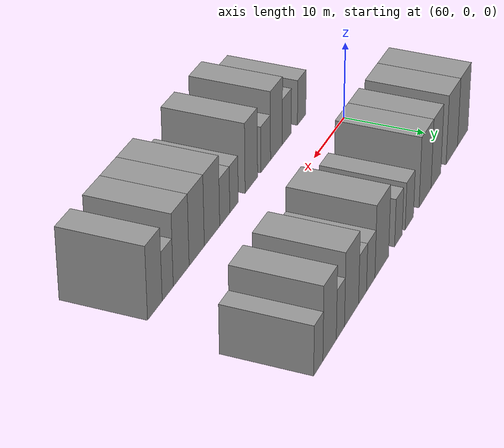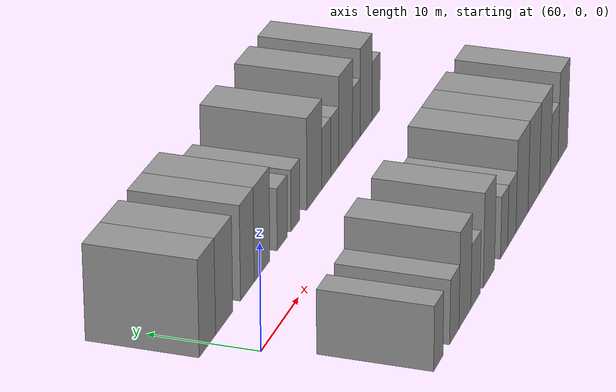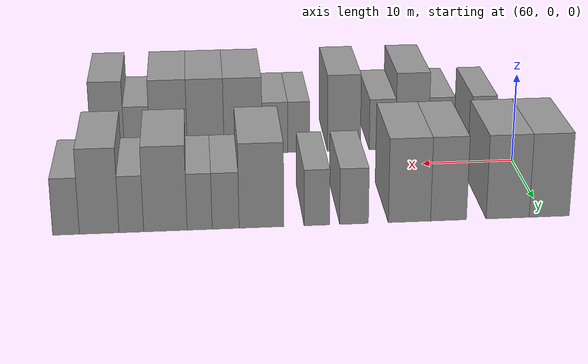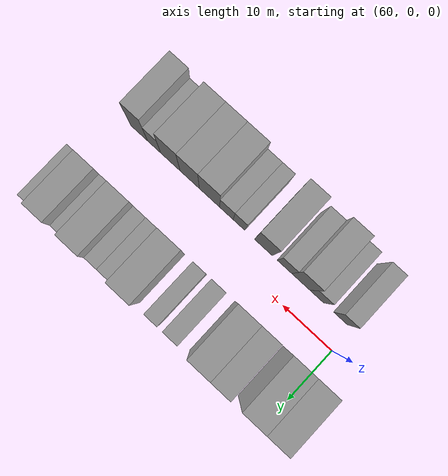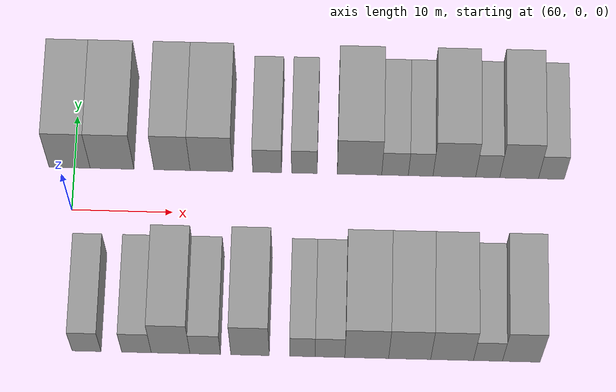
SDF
<sdf version="1.6">
 <world name="default">
  <model name="building_12">
   <static>1</static>
   <pose>59.4938 9.5000 0 0.000000 0.000000 1.570796</pose>
   <link name="link">
    <pose>0 0 4.50 0 0 0</pose>
    <collision name="collision"><geometry><box><size>10.0000 4.1035 9.0000</size></box></geometry></collision>
    <visual name="visual">
     <cast_shadows>0</cast_shadows>
     <geometry><box><size>10.0000 4.1035 9.0000</size></box></geometry>
     <material>
      <script>
       <uri>model://grey_wall/materials/scripts</uri>
       <uri>model://grey_wall/materials/textures</uri>
       <name>vrc/grey_wall</name>
      </script>
     </material>
    </visual>
   </link>
  </model>
  <model name="building_13">
   <static>1</static>
   <pose>63.7356 9.5000 0 0.000000 0.000000 1.570796</pose>
   <link name="link">
    <pose>0 0 4.50 0 0 0</pose>
    <collision name="collision"><geometry><box><size>10.0000 4.3802 9.0000</size></box></geometry></collision>
    <visual name="visual">
     <cast_shadows>0</cast_shadows>
     <geometry><box><size>10.0000 4.3802 9.0000</size></box></geometry>
     <material>
      <script>
       <uri>model://grey_wall/materials/scripts</uri>
       <uri>model://grey_wall/materials/textures</uri>
       <name>vrc/grey_wall</name>
      </script>
     </material>
    </visual>
   </link>
  </model>
  <model name="building_14">
   <static>1</static>
   <pose>69.7383 9.5000 0 0.000000 0.000000 1.570796</pose>
   <link name="link">
    <pose>0 0 4.50 0 0 0</pose>
    <collision name="collision"><geometry><box><size>10.0000 3.6252 9.0000</size></box></geometry></collision>
    <visual name="visual">
     <cast_shadows>0</cast_shadows>
     <geometry><box><size>10.0000 3.6252 9.0000</size></box></geometry>
     <material>
      <script>
       <uri>model://grey_wall/materials/scripts</uri>
       <uri>model://grey_wall/materials/textures</uri>
       <name>vrc/grey_wall</name>
      </script>
     </material>
    </visual>
   </link>
  </model>
  <model name="building_15">
   <static>1</static>
   <pose>73.6824 9.5000 0 0.000000 0.000000 1.570796</pose>
   <link name="link">
    <pose>0 0 4.50 0 0 0</pose>
    <collision name="collision"><geometry><box><size>10.0000 4.2629 9.0000</size></box></geometry></collision>
    <visual name="visual">
     <cast_shadows>0</cast_shadows>
     <geometry><box><size>10.0000 4.2629 9.0000</size></box></geometry>
     <material>
      <script>
       <uri>model://grey_wall/materials/scripts</uri>
       <uri>model://grey_wall/materials/textures</uri>
       <name>vrc/grey_wall</name>
      </script>
     </material>
    </visual>
   </link>
  </model>
  <model name="building_16">
   <static>1</static>
   <pose>79.2487 9.5000 0 0.000000 0.000000 1.570796</pose>
   <link name="link">
    <pose>0 0 3.00 0 0 0</pose>
    <collision name="collision"><geometry><box><size>10.0000 2.8696 6.0000</size></box></geometry></collision>
    <visual name="visual">
     <cast_shadows>0</cast_shadows>
     <geometry><box><size>10.0000 2.8696 6.0000</size></box></geometry>
     <material>
      <script>
       <uri>model://grey_wall/materials/scripts</uri>
       <uri>model://grey_wall/materials/textures</uri>
       <name>vrc/grey_wall</name>
      </script>
     </material>
    </visual>
   </link>
  </model>
  <model name="building_17">
   <static>1</static>
   <pose>82.9593 9.5000 0 0.000000 0.000000 1.570796</pose>
   <link name="link">
    <pose>0 0 3.00 0 0 0</pose>
    <collision name="collision"><geometry><box><size>10.0000 2.5515 6.0000</size></box></geometry></collision>
    <visual name="visual">
     <cast_shadows>0</cast_shadows>
     <geometry><box><size>10.0000 2.5515 6.0000</size></box></geometry>
     <material>
      <script>
       <uri>model://grey_wall/materials/scripts</uri>
       <uri>model://grey_wall/materials/textures</uri>
       <name>vrc/grey_wall</name>
      </script>
     </material>
    </visual>
   </link>
  </model>
  <model name="building_18">
   <static>1</static>
   <pose>88.4551 9.5000 0 0.000000 0.000000 1.570796</pose>
   <link name="link">
    <pose>0 0 4.50 0 0 0</pose>
    <collision name="collision"><geometry><box><size>10.0000 4.4401 9.0000</size></box></geometry></collision>
    <visual name="visual">
     <cast_shadows>0</cast_shadows>
     <geometry><box><size>10.0000 4.4401 9.0000</size></box></geometry>
     <material>
      <script>
       <uri>model://grey_wall/materials/scripts</uri>
       <uri>model://grey_wall/materials/textures</uri>
       <name>vrc/grey_wall</name>
      </script>
     </material>
    </visual>
   </link>
  </model>
  <model name="building_19">
   <static>1</static>
   <pose>92.0016 9.5000 0 0.000000 0.000000 1.570796</pose>
   <link name="link">
    <pose>0 0 3.00 0 0 0</pose>
    <collision name="collision"><geometry><box><size>10.0000 2.6529 6.0000</size></box></geometry></collision>
    <visual name="visual">
     <cast_shadows>0</cast_shadows>
     <geometry><box><size>10.0000 2.6529 6.0000</size></box></geometry>
     <material>
      <script>
       <uri>model://grey_wall/materials/scripts</uri>
       <uri>model://grey_wall/materials/textures</uri>
       <name>vrc/grey_wall</name>
      </script>
     </material>
    </visual>
   </link>
  </model>
  <model name="building_20">
   <static>1</static>
   <pose>94.5586 9.5000 0 0.000000 0.000000 1.570796</pose>
   <link name="link">
    <pose>0 0 3.00 0 0 0</pose>
    <collision name="collision"><geometry><box><size>10.0000 2.4611 6.0000</size></box></geometry></collision>
    <visual name="visual">
     <cast_shadows>0</cast_shadows>
     <geometry><box><size>10.0000 2.4611 6.0000</size></box></geometry>
     <material>
      <script>
       <uri>model://grey_wall/materials/scripts</uri>
       <uri>model://grey_wall/materials/textures</uri>
       <name>vrc/grey_wall</name>
      </script>
     </material>
    </visual>
   </link>
  </model>
  <model name="building_21">
   <static>1</static>
   <pose>97.9158 9.5000 0 0.000000 0.000000 1.570796</pose>
   <link name="link">
    <pose>0 0 4.50 0 0 0</pose>
    <collision name="collision"><geometry><box><size>10.0000 4.2533 9.0000</size></box></geometry></collision>
    <visual name="visual">
     <cast_shadows>0</cast_shadows>
     <geometry><box><size>10.0000 4.2533 9.0000</size></box></geometry>
     <material>
      <script>
       <uri>model://grey_wall/materials/scripts</uri>
       <uri>model://grey_wall/materials/textures</uri>
       <name>vrc/grey_wall</name>
      </script>
     </material>
    </visual>
   </link>
  </model>
  <model name="building_22">
   <static>1</static>
   <pose>101.2465 9.5000 0 0.000000 0.000000 1.570796</pose>
   <link name="link">
    <pose>0 0 3.00 0 0 0</pose>
    <collision name="collision"><geometry><box><size>10.0000 2.4080 6.0000</size></box></geometry></collision>
    <visual name="visual">
     <cast_shadows>0</cast_shadows>
     <geometry><box><size>10.0000 2.4080 6.0000</size></box></geometry>
     <material>
      <script>
       <uri>model://grey_wall/materials/scripts</uri>
       <uri>model://grey_wall/materials/textures</uri>
       <name>vrc/grey_wall</name>
      </script>
     </material>
    </visual>
   </link>
  </model>
  <model name="building_23">
   <static>1</static>
   <pose>104.3787 9.5000 0 0.000000 0.000000 1.570796</pose>
   <link name="link">
    <pose>0 0 4.50 0 0 0</pose>
    <collision name="collision"><geometry><box><size>10.0000 3.8563 9.0000</size></box></geometry></collision>
    <visual name="visual">
     <cast_shadows>0</cast_shadows>
     <geometry><box><size>10.0000 3.8563 9.0000</size></box></geometry>
     <material>
      <script>
       <uri>model://grey_wall/materials/scripts</uri>
       <uri>model://grey_wall/materials/textures</uri>
       <name>vrc/grey_wall</name>
      </script>
     </material>
    </visual>
   </link>
  </model>
  <model name="building_24">
   <static>1</static>
   <pose>107.5938 9.5000 0 0.000000 0.000000 1.570796</pose>
   <link name="link">
    <pose>0 0 3.00 0 0 0</pose>
    <collision name="collision"><geometry><box><size>10.0000 2.5739 6.0000</size></box></geometry></collision>
    <visual name="visual">
     <cast_shadows>0</cast_shadows>
     <geometry><box><size>10.0000 2.5739 6.0000</size></box></geometry>
     <material>
      <script>
       <uri>model://grey_wall/materials/scripts</uri>
       <uri>model://grey_wall/materials/textures</uri>
       <name>vrc/grey_wall</name>
      </script>
     </material>
    </visual>
   </link>
  </model>
  <model name="building_62">
   <static>1</static>
   <pose>62.3199 -9.5000 0 0.000000 0.000000 1.570796</pose>
   <link name="link">
    <pose>0 0 3.00 0 0 0</pose>
    <collision name="collision"><geometry><box><size>10.0000 2.8082 6.0000</size></box></geometry></collision>
    <visual name="visual">
     <cast_shadows>0</cast_shadows>
     <geometry><box><size>10.0000 2.8082 6.0000</size></box></geometry>
     <material>
      <script>
       <uri>model://grey_wall/materials/scripts</uri>
       <uri>model://grey_wall/materials/textures</uri>
       <name>vrc/grey_wall</name>
      </script>
     </material>
    </visual>
   </link>
  </model>
  <model name="building_63">
   <static>1</static>
   <pose>67.1581 -9.5000 0 0.000000 0.000000 1.570796</pose>
   <link name="link">
    <pose>0 0 3.00 0 0 0</pose>
    <collision name="collision"><geometry><box><size>10.0000 2.8682 6.0000</size></box></geometry></collision>
    <visual name="visual">
     <cast_shadows>0</cast_shadows>
     <geometry><box><size>10.0000 2.8682 6.0000</size></box></geometry>
     <material>
      <script>
       <uri>model://grey_wall/materials/scripts</uri>
       <uri>model://grey_wall/materials/textures</uri>
       <name>vrc/grey_wall</name>
      </script>
     </material>
    </visual>
   </link>
  </model>
  <model name="building_64">
   <static>1</static>
   <pose>70.4661 -9.5000 0 0.000000 0.000000 1.570796</pose>
   <link name="link">
    <pose>0 0 4.50 0 0 0</pose>
    <collision name="collision"><geometry><box><size>10.0000 3.7478 9.0000</size></box></geometry></collision>
    <visual name="visual">
     <cast_shadows>0</cast_shadows>
     <geometry><box><size>10.0000 3.7478 9.0000</size></box></geometry>
     <material>
      <script>
       <uri>model://grey_wall/materials/scripts</uri>
       <uri>model://grey_wall/materials/textures</uri>
       <name>vrc/grey_wall</name>
      </script>
     </material>
    </visual>
   </link>
  </model>
  <model name="building_65">
   <static>1</static>
   <pose>73.8275 -9.5000 0 0.000000 0.000000 1.570796</pose>
   <link name="link">
    <pose>0 0 3.00 0 0 0</pose>
    <collision name="collision"><geometry><box><size>10.0000 2.9749 6.0000</size></box></geometry></collision>
    <visual name="visual">
     <cast_shadows>0</cast_shadows>
     <geometry><box><size>10.0000 2.9749 6.0000</size></box></geometry>
     <material>
      <script>
       <uri>model://grey_wall/materials/scripts</uri>
       <uri>model://grey_wall/materials/textures</uri>
       <name>vrc/grey_wall</name>
      </script>
     </material>
    </visual>
   </link>
  </model>
  <model name="building_66">
   <static>1</static>
   <pose>78.1787 -9.5000 0 0.000000 0.000000 1.570796</pose>
   <link name="link">
    <pose>0 0 4.50 0 0 0</pose>
    <collision name="collision"><geometry><box><size>10.0000 3.7275 9.0000</size></box></geometry></collision>
    <visual name="visual">
     <cast_shadows>0</cast_shadows>
     <geometry><box><size>10.0000 3.7275 9.0000</size></box></geometry>
     <material>
      <script>
       <uri>model://grey_wall/materials/scripts</uri>
       <uri>model://grey_wall/materials/textures</uri>
       <name>vrc/grey_wall</name>
      </script>
     </material>
    </visual>
   </link>
  </model>
  <model name="building_67">
   <static>1</static>
   <pose>83.2695 -9.5000 0 0.000000 0.000000 1.570796</pose>
   <link name="link">
    <pose>0 0 3.00 0 0 0</pose>
    <collision name="collision"><geometry><box><size>10.0000 2.4541 6.0000</size></box></geometry></collision>
    <visual name="visual">
     <cast_shadows>0</cast_shadows>
     <geometry><box><size>10.0000 2.4541 6.0000</size></box></geometry>
     <material>
      <script>
       <uri>model://grey_wall/materials/scripts</uri>
       <uri>model://grey_wall/materials/textures</uri>
       <name>vrc/grey_wall</name>
      </script>
     </material>
    </visual>
   </link>
  </model>
  <model name="building_68">
   <static>1</static>
   <pose>85.9287 -9.5000 0 0.000000 0.000000 1.570796</pose>
   <link name="link">
    <pose>0 0 3.00 0 0 0</pose>
    <collision name="collision"><geometry><box><size>10.0000 2.8643 6.0000</size></box></geometry></collision>
    <visual name="visual">
     <cast_shadows>0</cast_shadows>
     <geometry><box><size>10.0000 2.8643 6.0000</size></box></geometry>
     <material>
      <script>
       <uri>model://grey_wall/materials/scripts</uri>
       <uri>model://grey_wall/materials/textures</uri>
       <name>vrc/grey_wall</name>
      </script>
     </material>
    </visual>
   </link>
  </model>
  <model name="building_69">
   <static>1</static>
   <pose>89.4830 -9.5000 0 0.000000 0.000000 1.570796</pose>
   <link name="link">
    <pose>0 0 4.50 0 0 0</pose>
    <collision name="collision"><geometry><box><size>10.0000 4.2442 9.0000</size></box></geometry></collision>
    <visual name="visual">
     <cast_shadows>0</cast_shadows>
     <geometry><box><size>10.0000 4.2442 9.0000</size></box></geometry>
     <material>
      <script>
       <uri>model://grey_wall/materials/scripts</uri>
       <uri>model://grey_wall/materials/textures</uri>
       <name>vrc/grey_wall</name>
      </script>
     </material>
    </visual>
   </link>
  </model>
  <model name="building_70">
   <static>1</static>
   <pose>93.6423 -9.5000 0 0.000000 0.000000 1.570796</pose>
   <link name="link">
    <pose>0 0 4.50 0 0 0</pose>
    <collision name="collision"><geometry><box><size>10.0000 4.0745 9.0000</size></box></geometry></collision>
    <visual name="visual">
     <cast_shadows>0</cast_shadows>
     <geometry><box><size>10.0000 4.0745 9.0000</size></box></geometry>
     <material>
      <script>
       <uri>model://grey_wall/materials/scripts</uri>
       <uri>model://grey_wall/materials/textures</uri>
       <name>vrc/grey_wall</name>
      </script>
     </material>
    </visual>
   </link>
  </model>
  <model name="building_71">
   <static>1</static>
   <pose>97.7479 -9.5000 0 0.000000 0.000000 1.570796</pose>
   <link name="link">
    <pose>0 0 4.50 0 0 0</pose>
    <collision name="collision"><geometry><box><size>10.0000 4.1367 9.0000</size></box></geometry></collision>
    <visual name="visual">
     <cast_shadows>0</cast_shadows>
     <geometry><box><size>10.0000 4.1367 9.0000</size></box></geometry>
     <material>
      <script>
       <uri>model://grey_wall/materials/scripts</uri>
       <uri>model://grey_wall/materials/textures</uri>
       <name>vrc/grey_wall</name>
      </script>
     </material>
    </visual>
   </link>
  </model>
  <model name="building_72">
   <static>1</static>
   <pose>101.2212 -9.5000 0 0.000000 0.000000 1.570796</pose>
   <link name="link">
    <pose>0 0 3.00 0 0 0</pose>
    <collision name="collision"><geometry><box><size>10.0000 2.8098 6.0000</size></box></geometry></collision>
    <visual name="visual">
     <cast_shadows>0</cast_shadows>
     <geometry><box><size>10.0000 2.8098 6.0000</size></box></geometry>
     <material>
      <script>
       <uri>model://grey_wall/materials/scripts</uri>
       <uri>model://grey_wall/materials/textures</uri>
       <name>vrc/grey_wall</name>
      </script>
     </material>
    </visual>
   </link>
  </model>
  <model name="building_73">
   <static>1</static>
   <pose>104.4474 -9.5000 0 0.000000 0.000000 1.570796</pose>
   <link name="link">
    <pose>0 0 4.50 0 0 0</pose>
    <collision name="collision"><geometry><box><size>10.0000 3.6427 9.0000</size></box></geometry></collision>
    <visual name="visual">
     <cast_shadows>0</cast_shadows>
     <geometry><box><size>10.0000 3.6427 9.0000</size></box></geometry>
     <material>
      <script>
       <uri>model://grey_wall/materials/scripts</uri>
       <uri>model://grey_wall/materials/textures</uri>
       <name>vrc/grey_wall</name>
      </script>
     </material>
    </visual>
   </link>
  </model>
 </world>
</sdf>
